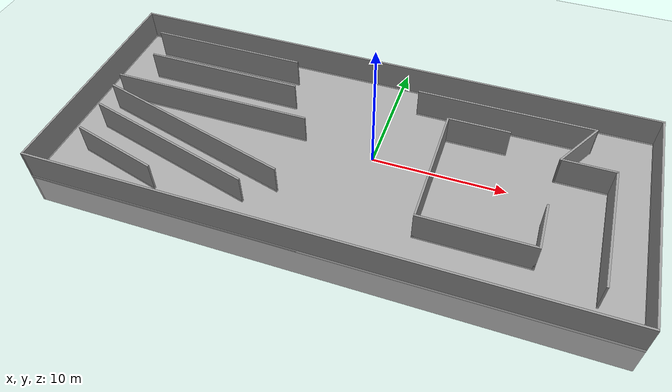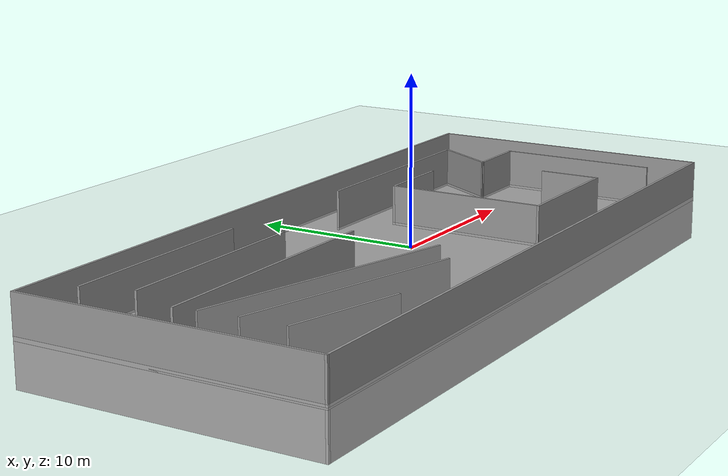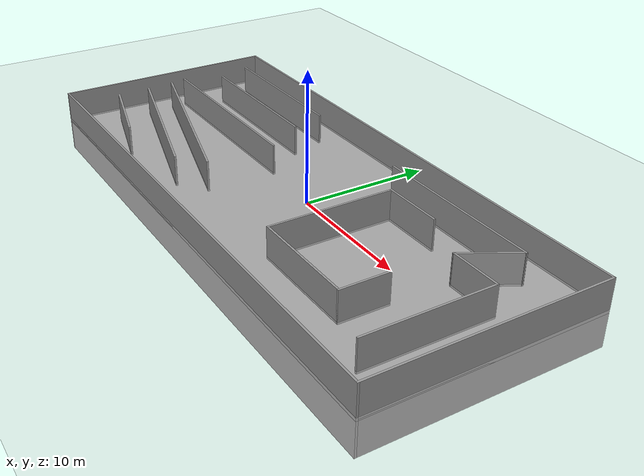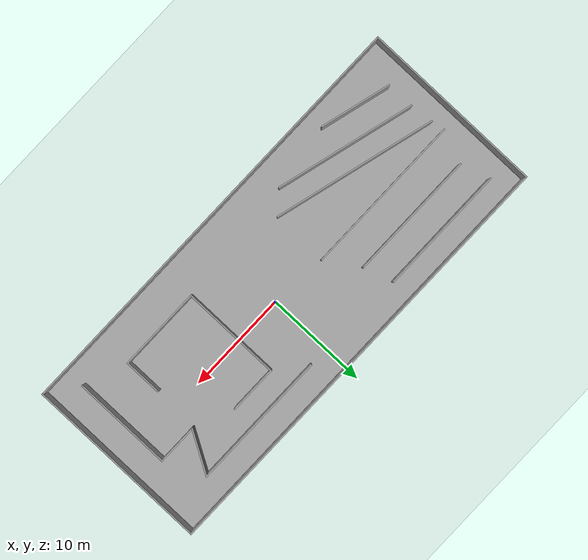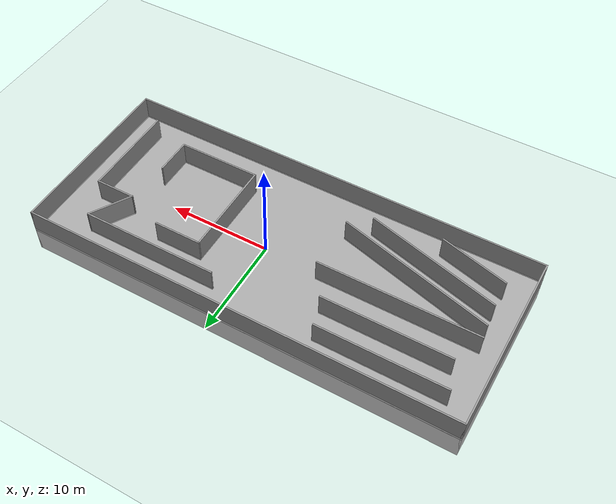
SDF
<sdf version="1.7">
 <world name="default">
  <light name="sun" type="directional">
   <pose>0 0 10 0 -0 0</pose>
   <diffuse>0.8 0.8 0.8 1</diffuse>
   <specular>0.2 0.2 0.2 1</specular>
   <attenuation>
    <range>1000</range>
    <constant>0.9</constant>
    <linear>0.01</linear>
    <quadratic>0.001</quadratic>
   </attenuation>
   <direction>-0.5 0.1 -0.9</direction>
   <spot><inner_angle>0</inner_angle><outer_angle>0</outer_angle><falloff>0</falloff></spot>
  </light>
  <model name="ground_plane">
   <static>1</static>
   <link name="link">
    <collision name="collision">
     <geometry><plane><normal>0 0 1</normal><size>100 100</size></plane></geometry>
     <surface>
      <contact><collide_bitmask>65535</collide_bitmask></contact>
      <friction><ode><mu>100</mu><mu2>50</mu2></ode></friction>
     </surface>
    </collision>
    <visual name="visual">
     <cast_shadows>0</cast_shadows>
     <geometry><plane><normal>0 0 1</normal><size>100 100</size></plane></geometry>
     <material>
      <script><uri>file://media/materials/scripts/gazebo.material</uri><name>Gazebo/Grey</name></script>
     </material>
    </visual>
   </link>
  </model>
  <gravity>0 0 -9.8</gravity>
  <magnetic_field>6e-06 2.3e-05 -4.2e-05</magnetic_field>
  <atmosphere type="adiabatic"/>
  <physics type="ode">
   <max_step_size>0.001</max_step_size>
   <real_time_factor>1</real_time_factor>
   <real_time_update_rate>1000</real_time_update_rate>
  </physics>
  <scene><ambient>0.4 0.4 0.4 1</ambient><background>0.7 0.7 0.7 1</background><shadows>1</shadows></scene>
  <spherical_coordinates>
   <surface_model>EARTH_WGS84</surface_model>
   <latitude_deg>0</latitude_deg>
   <longitude_deg>0</longitude_deg>
   <elevation>0</elevation>
   <heading_deg>0</heading_deg>
  </spherical_coordinates>
  <model name="big_test">
   <pose>-1.60872 -0.380198 -2.79309 0 -0 0</pose>
   <link name="Floor_0">
    <collision name="Floor_0_Collision">
     <geometry><box><size>43 18 0.1</size></box></geometry>
     <pose>0 0 0.05 0 -0 0</pose>
    </collision>
    <visual name="Floor_0_Visual">
     <pose>0 0 0.05 0 -0 0</pose>
     <geometry><box><size>43 18 0.1</size></box></geometry>
     <material>
      <script><uri>file://media/materials/scripts/gazebo.material</uri><name>Gazebo/Grey</name></script>
      <ambient>1 1 1 1</ambient>
     </material>
     <meta><layer>1</layer></meta>
    </visual>
    <pose>0 -0 2.5 0 -0 0</pose>
   </link>
   <link name="Wall_0">
    <collision name="Wall_0_Collision">
     <geometry><box><size>18 0.15 2.5</size></box></geometry>
     <pose>0 0 1.25 0 -0 0</pose>
    </collision>
    <visual name="Wall_0_Visual">
     <pose>0 0 1.25 0 -0 0</pose>
     <geometry><box><size>18 0.15 2.5</size></box></geometry>
     <material>
      <script><uri>file://media/materials/scripts/gazebo.material</uri><name>Gazebo/Grey</name></script>
      <ambient>1 1 1 1</ambient>
     </material>
     <meta><layer>0</layer></meta>
    </visual>
    <pose>-21.425 -0 0 0 -0 1.5708</pose>
   </link>
   <link name="Wall_1">
    <collision name="Wall_1_Collision">
     <geometry><box><size>43 0.15 2.5</size></box></geometry>
     <pose>0 0 1.25 0 -0 0</pose>
    </collision>
    <visual name="Wall_1_Visual">
     <pose>0 0 1.25 0 -0 0</pose>
     <geometry><box><size>43 0.15 2.5</size></box></geometry>
     <material>
      <script><uri>file://media/materials/scripts/gazebo.material</uri><name>Gazebo/Grey</name></script>
      <ambient>1 1 1 1</ambient>
     </material>
     <meta><layer>0</layer></meta>
    </visual>
    <pose>0 8.925 0 0 -0 0</pose>
   </link>
   <link name="Wall_13">
    <collision name="Wall_13_Collision">
     <geometry><box><size>13.5 0.15 2.5</size></box></geometry>
     <pose>0 0 1.25 0 -0 0</pose>
    </collision>
    <visual name="Wall_13_Visual">
     <pose>0 0 1.25 0 -0 0</pose>
     <geometry><box><size>13.5 0.15 2.5</size></box></geometry>
     <material>
      <script><uri>file://media/materials/scripts/gazebo.material</uri><name>Gazebo/Grey</name></script>
      <ambient>1 1 1 1</ambient>
     </material>
     <meta><layer>1</layer></meta>
    </visual>
    <pose>10.1593 6.46423 2.5 0 -0 0</pose>
   </link>
   <link name="Wall_14">
    <collision name="Wall_14_Collision">
     <geometry><box><size>4.5 0.15 2.5</size></box></geometry>
     <pose>0 0 1.25 0 -0 0</pose>
    </collision>
    <visual name="Wall_14_Visual">
     <pose>0 0 1.25 0 -0 0</pose>
     <geometry><box><size>4.5 0.15 2.5</size></box></geometry>
     <material>
      <script><uri>file://media/materials/scripts/gazebo.material</uri><name>Gazebo/Grey</name></script>
      <ambient>1 1 1 1</ambient>
     </material>
     <meta><layer>1</layer></meta>
    </visual>
    <pose>15.7468 4.58062 2.5 0 -0 -2.0944</pose>
   </link>
   <link name="Wall_15">
    <collision name="Wall_15_Collision">
     <geometry><box><size>4 0.15 2.5</size></box></geometry>
     <pose>0 0 1.25 0 -0 0</pose>
    </collision>
    <visual name="Wall_15_Visual">
     <pose>0 0 1.25 0 -0 0</pose>
     <geometry><box><size>4 0.15 2.5</size></box></geometry>
     <material>
      <script><uri>file://media/materials/scripts/gazebo.material</uri><name>Gazebo/Grey</name></script>
      <ambient>1 1 1 1</ambient>
     </material>
     <meta><layer>1</layer></meta>
    </visual>
    <pose>16.5843 2.69702 2.5 0 -0 0</pose>
   </link>
   <link name="Wall_16">
    <collision name="Wall_16_Collision">
     <geometry><box><size>9.75 0.15 2.5</size></box></geometry>
     <pose>0 0 1.25 0 -0 0</pose>
    </collision>
    <visual name="Wall_16_Visual">
     <pose>0 0 1.25 0 -0 0</pose>
     <geometry><box><size>9.75 0.15 2.5</size></box></geometry>
     <material>
      <script><uri>file://media/materials/scripts/gazebo.material</uri><name>Gazebo/Grey</name></script>
      <ambient>1 1 1 1</ambient>
     </material>
     <meta><layer>1</layer></meta>
    </visual>
    <pose>18.5093 -2.10298 2.5 0 -0 -1.5708</pose>
   </link>
   <link name="Wall_18">
    <collision name="Wall_18_Collision">
     <geometry><box><size>4.75 0.15 2.5</size></box></geometry>
     <pose>0 0 1.25 0 -0 0</pose>
    </collision>
    <visual name="Wall_18_Visual">
     <pose>0 0 1.25 0 -0 0</pose>
     <geometry><box><size>4.75 0.15 2.5</size></box></geometry>
     <material>
      <script><uri>file://media/materials/scripts/gazebo.material</uri><name>Gazebo/Grey</name></script>
      <ambient>1 1 1 1</ambient>
     </material>
     <meta><layer>1</layer></meta>
    </visual>
    <pose>8.53513 4.23108 2.5 0 -0 3.14159</pose>
   </link>
   <link name="Wall_19">
    <collision name="Wall_19_Collision">
     <geometry><box><size>9.75 0.15 2.5</size></box></geometry>
     <pose>0 0 1.25 0 -0 0</pose>
    </collision>
    <visual name="Wall_19_Visual">
     <pose>0 0 1.25 0 -0 0</pose>
     <geometry><box><size>9.75 0.15 2.5</size></box></geometry>
     <material>
      <script><uri>file://media/materials/scripts/gazebo.material</uri><name>Gazebo/Grey</name></script>
      <ambient>1 1 1 1</ambient>
     </material>
     <meta><layer>1</layer></meta>
    </visual>
    <pose>6.23513 -0.568918 2.5 0 -0 -1.5708</pose>
   </link>
   <link name="Wall_2">
    <collision name="Wall_2_Collision">
     <geometry><box><size>18 0.15 2.5</size></box></geometry>
     <pose>0 0 1.25 0 -0 0</pose>
    </collision>
    <visual name="Wall_2_Visual">
     <pose>0 0 1.25 0 -0 0</pose>
     <geometry><box><size>18 0.15 2.5</size></box></geometry>
     <material>
      <script><uri>file://media/materials/scripts/gazebo.material</uri><name>Gazebo/Grey</name></script>
      <ambient>1 1 1 1</ambient>
     </material>
     <meta><layer>0</layer></meta>
    </visual>
    <pose>21.425 -0 0 0 -0 -1.5708</pose>
   </link>
   <link name="Wall_20">
    <collision name="Wall_20_Collision">
     <geometry><box><size>8.25 0.15 2.5</size></box></geometry>
     <pose>0 0 1.25 0 -0 0</pose>
    </collision>
    <visual name="Wall_20_Visual">
     <pose>0 0 1.25 0 -0 0</pose>
     <geometry><box><size>8.25 0.15 2.5</size></box></geometry>
     <material>
      <script><uri>file://media/materials/scripts/gazebo.material</uri><name>Gazebo/Grey</name></script>
      <ambient>1 1 1 1</ambient>
     </material>
     <meta><layer>1</layer></meta>
    </visual>
    <pose>10.2851 -5.36892 2.5 0 -0 0</pose>
   </link>
   <link name="Wall_21">
    <collision name="Wall_21_Collision">
     <geometry><box><size>3.75 0.15 2.5</size></box></geometry>
     <pose>0 0 1.25 0 -0 0</pose>
    </collision>
    <visual name="Wall_21_Visual">
     <pose>0 0 1.25 0 -0 0</pose>
     <geometry><box><size>3.75 0.15 2.5</size></box></geometry>
     <material>
      <script><uri>file://media/materials/scripts/gazebo.material</uri><name>Gazebo/Grey</name></script>
      <ambient>1 1 1 1</ambient>
     </material>
     <meta><layer>1</layer></meta>
    </visual>
    <pose>14.3351 -3.56892 2.5 0 -0 1.5708</pose>
   </link>
   <link name="Wall_23">
    <collision name="Wall_23_Collision">
     <geometry><box><size>12.5 0.15 2.5</size></box></geometry>
     <pose>0 0 1.25 0 -0 0</pose>
    </collision>
    <visual name="Wall_23_Visual">
     <pose>0 0 1.25 0 -0 0</pose>
     <geometry><box><size>12.5 0.15 2.5</size></box></geometry>
     <material>
      <script><uri>file://media/materials/scripts/gazebo.material</uri><name>Gazebo/Grey</name></script>
      <ambient>1 1 1 1</ambient>
     </material>
     <meta><layer>1</layer></meta>
    </visual>
    <pose>-12.9978 6.74337 2.5 0 -0 0</pose>
   </link>
   <link name="Wall_25">
    <collision name="Wall_25_Collision">
     <geometry><box><size>12.5 0.15 2.5</size></box></geometry>
     <pose>0 0 1.25 0 -0 0</pose>
    </collision>
    <visual name="Wall_25_Visual">
     <pose>0 0 1.25 0 -0 0</pose>
     <geometry><box><size>12.5 0.15 2.5</size></box></geometry>
     <material>
      <script><uri>file://media/materials/scripts/gazebo.material</uri><name>Gazebo/Grey</name></script>
      <ambient>1 1 1 1</ambient>
     </material>
     <meta><layer>1</layer></meta>
    </visual>
    <pose>-12.1138 3.95194 2.5 0 -0 0</pose>
   </link>
   <link name="Wall_27">
    <collision name="Wall_27_Collision">
     <geometry><box><size>15.75 0.15 2.5</size></box></geometry>
     <pose>0 0 1.25 0 -0 0</pose>
    </collision>
    <visual name="Wall_27_Visual">
     <pose>0 0 1.25 0 -0 0</pose>
     <geometry><box><size>15.75 0.15 2.5</size></box></geometry>
     <material>
      <script><uri>file://media/materials/scripts/gazebo.material</uri><name>Gazebo/Grey</name></script>
      <ambient>1 1 1 1</ambient>
     </material>
     <meta><layer>1</layer></meta>
    </visual>
    <pose>-11.6985 0.834836 2.5 0 -0 0</pose>
   </link>
   <link name="Wall_3">
    <collision name="Wall_3_Collision">
     <geometry><box><size>43 0.15 2.5</size></box></geometry>
     <pose>0 0 1.25 0 -0 0</pose>
    </collision>
    <visual name="Wall_3_Visual">
     <pose>0 0 1.25 0 -0 0</pose>
     <geometry><box><size>43 0.15 2.5</size></box></geometry>
     <material>
      <script><uri>file://media/materials/scripts/gazebo.material</uri><name>Gazebo/Grey</name></script>
      <ambient>1 1 1 1</ambient>
     </material>
     <meta><layer>0</layer></meta>
    </visual>
    <pose>0 -8.925 0 0 -0 3.14159</pose>
   </link>
   <link name="Wall_30">
    <collision name="Wall_30_Collision">
     <geometry><box><size>16 0.15 2.5</size></box></geometry>
     <pose>0 0 1.25 0 -0 0</pose>
    </collision>
    <visual name="Wall_30_Visual">
     <pose>0 0 1.25 0 -0 0</pose>
     <geometry><box><size>16 0.15 2.5</size></box></geometry>
     <material>
      <script><uri>file://media/materials/scripts/gazebo.material</uri><name>Gazebo/Grey</name></script>
      <ambient>1 1 1 1</ambient>
     </material>
     <meta><layer>1</layer></meta>
    </visual>
    <pose>-11.6574 -2.51898 2.5 0 -0 -0.261799</pose>
   </link>
   <link name="Wall_32">
    <collision name="Wall_32_Collision">
     <geometry><box><size>13.75 0.15 2.5</size></box></geometry>
     <pose>0 0 1.25 0 -0 0</pose>
    </collision>
    <visual name="Wall_32_Visual">
     <pose>0 0 1.25 0 -0 0</pose>
     <geometry><box><size>13.75 0.15 2.5</size></box></geometry>
     <material>
      <script><uri>file://media/materials/scripts/gazebo.material</uri><name>Gazebo/Grey</name></script>
      <ambient>1 1 1 1</ambient>
     </material>
     <meta><layer>1</layer></meta>
    </visual>
    <pose>-12.5115 -4.46095 2.5 0 -0 -0.261799</pose>
   </link>
   <link name="Wall_34">
    <collision name="Wall_34_Collision">
     <geometry><box><size>7 0.15 2.5</size></box></geometry>
     <pose>0 0 1.25 0 -0 0</pose>
    </collision>
    <visual name="Wall_34_Visual">
     <pose>0 0 1.25 0 -0 0</pose>
     <geometry><box><size>7 0.15 2.5</size></box></geometry>
     <material>
      <script><uri>file://media/materials/scripts/gazebo.material</uri><name>Gazebo/Grey</name></script>
      <ambient>1 1 1 1</ambient>
     </material>
     <meta><layer>1</layer></meta>
    </visual>
    <pose>-15.7249 -6.2393 2.5 0 -0 -0.261799</pose>
   </link>
   <link name="Wall_5">
    <collision name="Wall_5_Collision">
     <geometry><box><size>18 0.15 2.5</size></box></geometry>
     <pose>0 0 1.25 0 -0 0</pose>
    </collision>
    <visual name="Wall_5_Visual">
     <pose>0 0 1.25 0 -0 0</pose>
     <geometry><box><size>18 0.15 2.5</size></box></geometry>
     <material>
      <script><uri>file://media/materials/scripts/gazebo.material</uri><name>Gazebo/Grey</name></script>
      <ambient>1 1 1 1</ambient>
     </material>
     <meta><layer>1</layer></meta>
    </visual>
    <pose>-21.425 -0 2.5 0 -0 1.5708</pose>
   </link>
   <link name="Wall_6">
    <collision name="Wall_6_Collision">
     <geometry><box><size>43 0.15 2.5</size></box></geometry>
     <pose>0 0 1.25 0 -0 0</pose>
    </collision>
    <visual name="Wall_6_Visual">
     <pose>0 0 1.25 0 -0 0</pose>
     <geometry><box><size>43 0.15 2.5</size></box></geometry>
     <material>
      <script><uri>file://media/materials/scripts/gazebo.material</uri><name>Gazebo/Grey</name></script>
      <ambient>1 1 1 1</ambient>
     </material>
     <meta><layer>1</layer></meta>
    </visual>
    <pose>0 8.925 2.5 0 -0 0</pose>
   </link>
   <link name="Wall_7">
    <collision name="Wall_7_Collision">
     <geometry><box><size>18 0.15 2.5</size></box></geometry>
     <pose>0 0 1.25 0 -0 0</pose>
    </collision>
    <visual name="Wall_7_Visual">
     <pose>0 0 1.25 0 -0 0</pose>
     <geometry><box><size>18 0.15 2.5</size></box></geometry>
     <material>
      <script><uri>file://media/materials/scripts/gazebo.material</uri><name>Gazebo/Grey</name></script>
      <ambient>1 1 1 1</ambient>
     </material>
     <meta><layer>1</layer></meta>
    </visual>
    <pose>21.425 -0 2.5 0 -0 -1.5708</pose>
   </link>
   <link name="Wall_8">
    <collision name="Wall_8_Collision">
     <geometry><box><size>43 0.15 2.5</size></box></geometry>
     <pose>0 0 1.25 0 -0 0</pose>
    </collision>
    <visual name="Wall_8_Visual">
     <pose>0 0 1.25 0 -0 0</pose>
     <geometry><box><size>43 0.15 2.5</size></box></geometry>
     <material>
      <script><uri>file://media/materials/scripts/gazebo.material</uri><name>Gazebo/Grey</name></script>
      <ambient>1 1 1 1</ambient>
     </material>
     <meta><layer>1</layer></meta>
    </visual>
    <pose>0 -8.925 2.5 0 -0 3.14159</pose>
   </link>
   <static>1</static>
  </model>
 </world>
</sdf>
